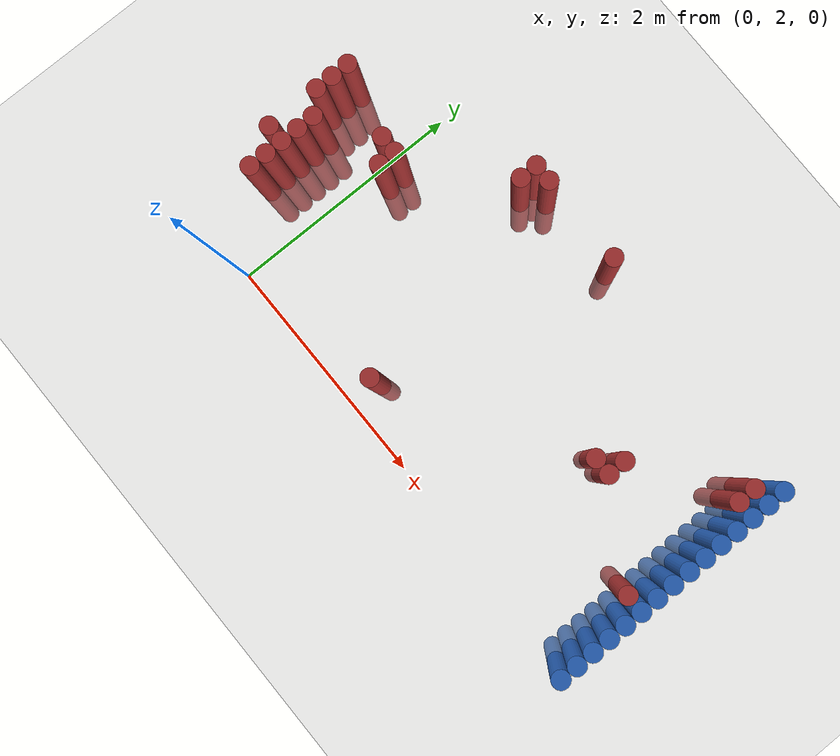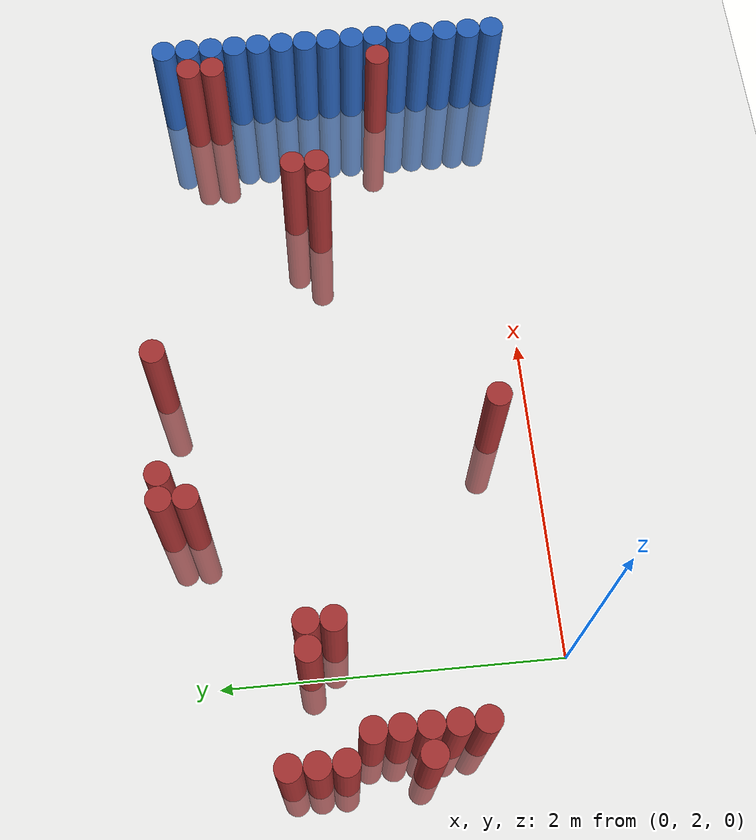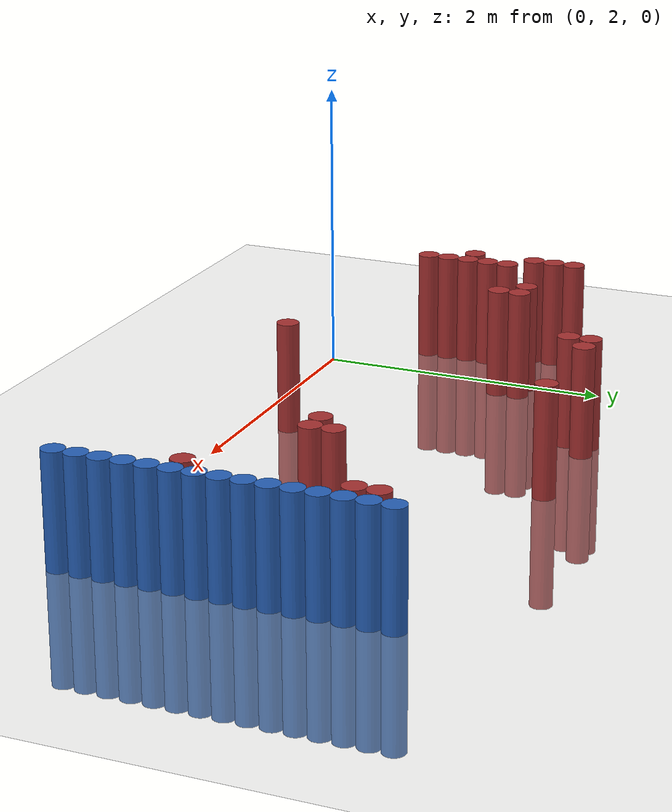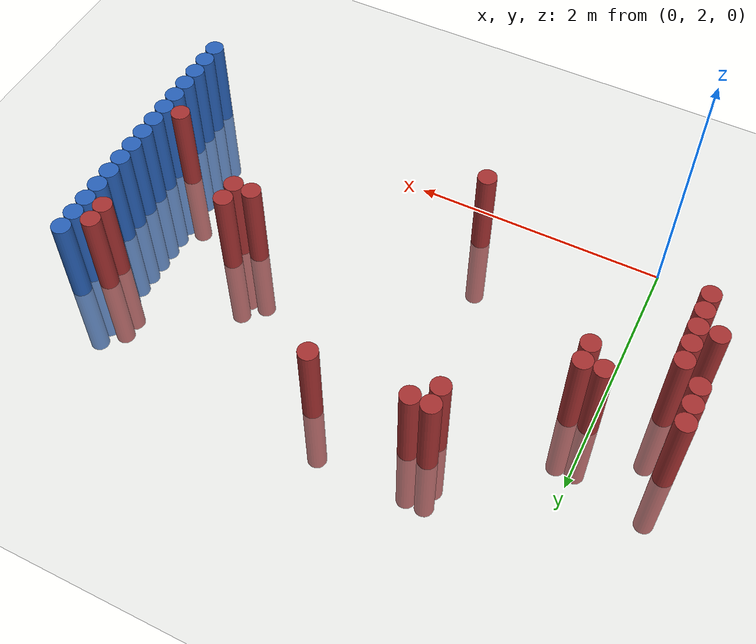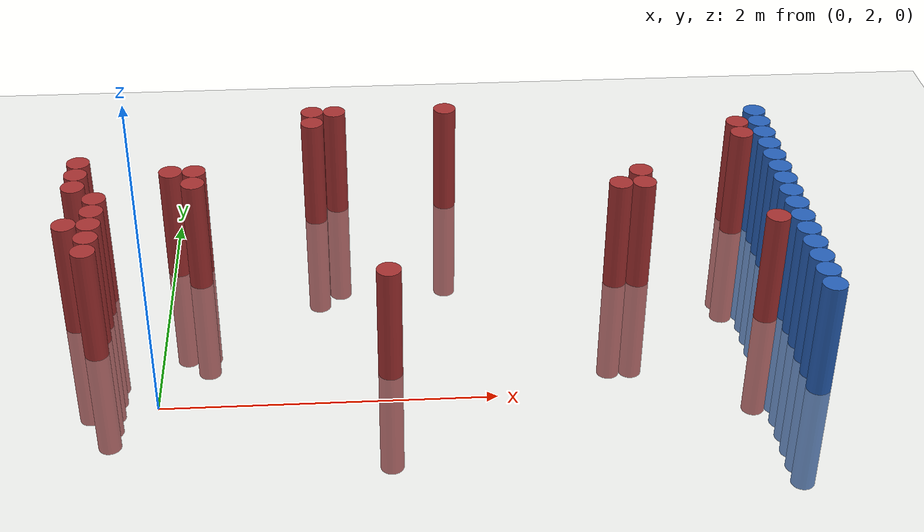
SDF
<sdf version="1.6">
 <world name="default">
  <model name="ground_plane">
   <static>1</static>
   <link name="link">
    <collision name="collision">
     <geometry><plane><normal>0 0 1</normal><size>100 100</size></plane></geometry>
     <surface><friction><ode><mu>100</mu><mu2>50</mu2></ode></friction></surface>
    </collision>
    <visual name="visual">
     <cast_shadows>0</cast_shadows>
     <geometry><plane><normal>0 0 1</normal><size>100 100</size></plane></geometry>
     <material>
      <script><uri>file://media/materials/scripts/gazebo.material</uri><name>Gazebo/Grey</name></script>
     </material>
    </visual>
   </link>
  </model>
  <model name="unit_cylinder_140">
   <static>1</static>
   <pose>3.925000 1.975000 0.000000 0.000000 0.000000 0.000000</pose>
   <link name="link">
    <inertial>
     <mass>1</mass>
     <inertia><ixx>0.145833</ixx><ixy>0</ixy><ixz>0</ixz><iyy>0.145833</iyy><iyz>0</iyz><izz>0.125</izz></inertia>
    </inertial>
    <collision name="collision">
     <geometry><cylinder><radius>0.075000</radius><length>1.5</length></cylinder></geometry>
    </collision>
    <visual name="visual">
     <geometry><cylinder><radius>0.075000</radius><length>1.5</length></cylinder></geometry>
     <material>
      <ambient>0.152000 0.379000 0.720000 1</ambient>
      <diffuse>0.152000 0.379000 0.720000 1</diffuse>
     </material>
     <material>
      <script><name>Gazebo/Grey</name><uri>file://media/materials/scripts/gazebo.material</uri></script>
     </material>
    </visual>
   </link>
  </model>
  <model name="unit_cylinder_142">
   <static>1</static>
   <pose>3.925000 2.125000 0.000000 0.000000 0.000000 0.000000</pose>
   <link name="link">
    <inertial>
     <mass>1</mass>
     <inertia><ixx>0.145833</ixx><ixy>0</ixy><ixz>0</ixz><iyy>0.145833</iyy><iyz>0</iyz><izz>0.125</izz></inertia>
    </inertial>
    <collision name="collision">
     <geometry><cylinder><radius>0.075000</radius><length>1.5</length></cylinder></geometry>
    </collision>
    <visual name="visual">
     <geometry><cylinder><radius>0.075000</radius><length>1.5</length></cylinder></geometry>
     <material>
      <ambient>0.152000 0.379000 0.720000 1</ambient>
      <diffuse>0.152000 0.379000 0.720000 1</diffuse>
     </material>
     <material>
      <script><name>Gazebo/Grey</name><uri>file://media/materials/scripts/gazebo.material</uri></script>
     </material>
    </visual>
   </link>
  </model>
  <model name="unit_cylinder_144">
   <static>1</static>
   <pose>3.925000 2.275000 0.000000 0.000000 0.000000 0.000000</pose>
   <link name="link">
    <inertial>
     <mass>1</mass>
     <inertia><ixx>0.145833</ixx><ixy>0</ixy><ixz>0</ixz><iyy>0.145833</iyy><iyz>0</iyz><izz>0.125</izz></inertia>
    </inertial>
    <collision name="collision">
     <geometry><cylinder><radius>0.075000</radius><length>1.5</length></cylinder></geometry>
    </collision>
    <visual name="visual">
     <geometry><cylinder><radius>0.075000</radius><length>1.5</length></cylinder></geometry>
     <material>
      <ambient>0.152000 0.379000 0.720000 1</ambient>
      <diffuse>0.152000 0.379000 0.720000 1</diffuse>
     </material>
     <material>
      <script><name>Gazebo/Grey</name><uri>file://media/materials/scripts/gazebo.material</uri></script>
     </material>
    </visual>
   </link>
  </model>
  <model name="unit_cylinder_146">
   <static>1</static>
   <pose>3.925000 2.425000 0.000000 0.000000 0.000000 0.000000</pose>
   <link name="link">
    <inertial>
     <mass>1</mass>
     <inertia><ixx>0.145833</ixx><ixy>0</ixy><ixz>0</ixz><iyy>0.145833</iyy><iyz>0</iyz><izz>0.125</izz></inertia>
    </inertial>
    <collision name="collision">
     <geometry><cylinder><radius>0.075000</radius><length>1.5</length></cylinder></geometry>
    </collision>
    <visual name="visual">
     <geometry><cylinder><radius>0.075000</radius><length>1.5</length></cylinder></geometry>
     <material>
      <ambient>0.152000 0.379000 0.720000 1</ambient>
      <diffuse>0.152000 0.379000 0.720000 1</diffuse>
     </material>
     <material>
      <script><name>Gazebo/Grey</name><uri>file://media/materials/scripts/gazebo.material</uri></script>
     </material>
    </visual>
   </link>
  </model>
  <model name="unit_cylinder_148">
   <static>1</static>
   <pose>3.925000 2.575000 0.000000 0.000000 0.000000 0.000000</pose>
   <link name="link">
    <inertial>
     <mass>1</mass>
     <inertia><ixx>0.145833</ixx><ixy>0</ixy><ixz>0</ixz><iyy>0.145833</iyy><iyz>0</iyz><izz>0.125</izz></inertia>
    </inertial>
    <collision name="collision">
     <geometry><cylinder><radius>0.075000</radius><length>1.5</length></cylinder></geometry>
    </collision>
    <visual name="visual">
     <geometry><cylinder><radius>0.075000</radius><length>1.5</length></cylinder></geometry>
     <material>
      <ambient>0.152000 0.379000 0.720000 1</ambient>
      <diffuse>0.152000 0.379000 0.720000 1</diffuse>
     </material>
     <material>
      <script><name>Gazebo/Grey</name><uri>file://media/materials/scripts/gazebo.material</uri></script>
     </material>
    </visual>
   </link>
  </model>
  <model name="unit_cylinder_150">
   <static>1</static>
   <pose>3.925000 2.725000 0.000000 0.000000 0.000000 0.000000</pose>
   <link name="link">
    <inertial>
     <mass>1</mass>
     <inertia><ixx>0.145833</ixx><ixy>0</ixy><ixz>0</ixz><iyy>0.145833</iyy><iyz>0</iyz><izz>0.125</izz></inertia>
    </inertial>
    <collision name="collision">
     <geometry><cylinder><radius>0.075000</radius><length>1.5</length></cylinder></geometry>
    </collision>
    <visual name="visual">
     <geometry><cylinder><radius>0.075000</radius><length>1.5</length></cylinder></geometry>
     <material>
      <ambient>0.152000 0.379000 0.720000 1</ambient>
      <diffuse>0.152000 0.379000 0.720000 1</diffuse>
     </material>
     <material>
      <script><name>Gazebo/Grey</name><uri>file://media/materials/scripts/gazebo.material</uri></script>
     </material>
    </visual>
   </link>
  </model>
  <model name="unit_cylinder_152">
   <static>1</static>
   <pose>3.925000 2.875000 0.000000 0.000000 0.000000 0.000000</pose>
   <link name="link">
    <inertial>
     <mass>1</mass>
     <inertia><ixx>0.145833</ixx><ixy>0</ixy><ixz>0</ixz><iyy>0.145833</iyy><iyz>0</iyz><izz>0.125</izz></inertia>
    </inertial>
    <collision name="collision">
     <geometry><cylinder><radius>0.075000</radius><length>1.5</length></cylinder></geometry>
    </collision>
    <visual name="visual">
     <geometry><cylinder><radius>0.075000</radius><length>1.5</length></cylinder></geometry>
     <material>
      <ambient>0.152000 0.379000 0.720000 1</ambient>
      <diffuse>0.152000 0.379000 0.720000 1</diffuse>
     </material>
     <material>
      <script><name>Gazebo/Grey</name><uri>file://media/materials/scripts/gazebo.material</uri></script>
     </material>
    </visual>
   </link>
  </model>
  <model name="unit_cylinder_154">
   <static>1</static>
   <pose>3.925000 3.025000 0.000000 0.000000 0.000000 0.000000</pose>
   <link name="link">
    <inertial>
     <mass>1</mass>
     <inertia><ixx>0.145833</ixx><ixy>0</ixy><ixz>0</ixz><iyy>0.145833</iyy><iyz>0</iyz><izz>0.125</izz></inertia>
    </inertial>
    <collision name="collision">
     <geometry><cylinder><radius>0.075000</radius><length>1.5</length></cylinder></geometry>
    </collision>
    <visual name="visual">
     <geometry><cylinder><radius>0.075000</radius><length>1.5</length></cylinder></geometry>
     <material>
      <ambient>0.152000 0.379000 0.720000 1</ambient>
      <diffuse>0.152000 0.379000 0.720000 1</diffuse>
     </material>
     <material>
      <script><name>Gazebo/Grey</name><uri>file://media/materials/scripts/gazebo.material</uri></script>
     </material>
    </visual>
   </link>
  </model>
  <model name="unit_cylinder_156">
   <static>1</static>
   <pose>3.925000 3.175000 0.000000 0.000000 0.000000 0.000000</pose>
   <link name="link">
    <inertial>
     <mass>1</mass>
     <inertia><ixx>0.145833</ixx><ixy>0</ixy><ixz>0</ixz><iyy>0.145833</iyy><iyz>0</iyz><izz>0.125</izz></inertia>
    </inertial>
    <collision name="collision">
     <geometry><cylinder><radius>0.075000</radius><length>1.5</length></cylinder></geometry>
    </collision>
    <visual name="visual">
     <geometry><cylinder><radius>0.075000</radius><length>1.5</length></cylinder></geometry>
     <material>
      <ambient>0.152000 0.379000 0.720000 1</ambient>
      <diffuse>0.152000 0.379000 0.720000 1</diffuse>
     </material>
     <material>
      <script><name>Gazebo/Grey</name><uri>file://media/materials/scripts/gazebo.material</uri></script>
     </material>
    </visual>
   </link>
  </model>
  <model name="unit_cylinder_158">
   <static>1</static>
   <pose>3.925000 3.325000 0.000000 0.000000 0.000000 0.000000</pose>
   <link name="link">
    <inertial>
     <mass>1</mass>
     <inertia><ixx>0.145833</ixx><ixy>0</ixy><ixz>0</ixz><iyy>0.145833</iyy><iyz>0</iyz><izz>0.125</izz></inertia>
    </inertial>
    <collision name="collision">
     <geometry><cylinder><radius>0.075000</radius><length>1.5</length></cylinder></geometry>
    </collision>
    <visual name="visual">
     <geometry><cylinder><radius>0.075000</radius><length>1.5</length></cylinder></geometry>
     <material>
      <ambient>0.152000 0.379000 0.720000 1</ambient>
      <diffuse>0.152000 0.379000 0.720000 1</diffuse>
     </material>
     <material>
      <script><name>Gazebo/Grey</name><uri>file://media/materials/scripts/gazebo.material</uri></script>
     </material>
    </visual>
   </link>
  </model>
  <model name="unit_cylinder_160">
   <static>1</static>
   <pose>3.925000 3.475000 0.000000 0.000000 0.000000 0.000000</pose>
   <link name="link">
    <inertial>
     <mass>1</mass>
     <inertia><ixx>0.145833</ixx><ixy>0</ixy><ixz>0</ixz><iyy>0.145833</iyy><iyz>0</iyz><izz>0.125</izz></inertia>
    </inertial>
    <collision name="collision">
     <geometry><cylinder><radius>0.075000</radius><length>1.5</length></cylinder></geometry>
    </collision>
    <visual name="visual">
     <geometry><cylinder><radius>0.075000</radius><length>1.5</length></cylinder></geometry>
     <material>
      <ambient>0.152000 0.379000 0.720000 1</ambient>
      <diffuse>0.152000 0.379000 0.720000 1</diffuse>
     </material>
     <material>
      <script><name>Gazebo/Grey</name><uri>file://media/materials/scripts/gazebo.material</uri></script>
     </material>
    </visual>
   </link>
  </model>
  <model name="unit_cylinder_162">
   <static>1</static>
   <pose>3.925000 3.625000 0.000000 0.000000 0.000000 0.000000</pose>
   <link name="link">
    <inertial>
     <mass>1</mass>
     <inertia><ixx>0.145833</ixx><ixy>0</ixy><ixz>0</ixz><iyy>0.145833</iyy><iyz>0</iyz><izz>0.125</izz></inertia>
    </inertial>
    <collision name="collision">
     <geometry><cylinder><radius>0.075000</radius><length>1.5</length></cylinder></geometry>
    </collision>
    <visual name="visual">
     <geometry><cylinder><radius>0.075000</radius><length>1.5</length></cylinder></geometry>
     <material>
      <ambient>0.152000 0.379000 0.720000 1</ambient>
      <diffuse>0.152000 0.379000 0.720000 1</diffuse>
     </material>
     <material>
      <script><name>Gazebo/Grey</name><uri>file://media/materials/scripts/gazebo.material</uri></script>
     </material>
    </visual>
   </link>
  </model>
  <model name="unit_cylinder_164">
   <static>1</static>
   <pose>3.925000 3.775000 0.000000 0.000000 0.000000 0.000000</pose>
   <link name="link">
    <inertial>
     <mass>1</mass>
     <inertia><ixx>0.145833</ixx><ixy>0</ixy><ixz>0</ixz><iyy>0.145833</iyy><iyz>0</iyz><izz>0.125</izz></inertia>
    </inertial>
    <collision name="collision">
     <geometry><cylinder><radius>0.075000</radius><length>1.5</length></cylinder></geometry>
    </collision>
    <visual name="visual">
     <geometry><cylinder><radius>0.075000</radius><length>1.5</length></cylinder></geometry>
     <material>
      <ambient>0.152000 0.379000 0.720000 1</ambient>
      <diffuse>0.152000 0.379000 0.720000 1</diffuse>
     </material>
     <material>
      <script><name>Gazebo/Grey</name><uri>file://media/materials/scripts/gazebo.material</uri></script>
     </material>
    </visual>
   </link>
  </model>
  <model name="unit_cylinder_166">
   <static>1</static>
   <pose>3.925000 3.925000 0.000000 0.000000 0.000000 0.000000</pose>
   <link name="link">
    <inertial>
     <mass>1</mass>
     <inertia><ixx>0.145833</ixx><ixy>0</ixy><ixz>0</ixz><iyy>0.145833</iyy><iyz>0</iyz><izz>0.125</izz></inertia>
    </inertial>
    <collision name="collision">
     <geometry><cylinder><radius>0.075000</radius><length>1.5</length></cylinder></geometry>
    </collision>
    <visual name="visual">
     <geometry><cylinder><radius>0.075000</radius><length>1.5</length></cylinder></geometry>
     <material>
      <ambient>0.152000 0.379000 0.720000 1</ambient>
      <diffuse>0.152000 0.379000 0.720000 1</diffuse>
     </material>
     <material>
      <script><name>Gazebo/Grey</name><uri>file://media/materials/scripts/gazebo.material</uri></script>
     </material>
    </visual>
   </link>
  </model>
  <model name="unit_cylinder_168">
   <static>1</static>
   <pose>3.925000 4.075000 0.000000 0.000000 0.000000 0.000000</pose>
   <link name="link">
    <inertial>
     <mass>1</mass>
     <inertia><ixx>0.145833</ixx><ixy>0</ixy><ixz>0</ixz><iyy>0.145833</iyy><iyz>0</iyz><izz>0.125</izz></inertia>
    </inertial>
    <collision name="collision">
     <geometry><cylinder><radius>0.075000</radius><length>1.5</length></cylinder></geometry>
    </collision>
    <visual name="visual">
     <geometry><cylinder><radius>0.075000</radius><length>1.5</length></cylinder></geometry>
     <material>
      <ambient>0.152000 0.379000 0.720000 1</ambient>
      <diffuse>0.152000 0.379000 0.720000 1</diffuse>
     </material>
     <material>
      <script><name>Gazebo/Grey</name><uri>file://media/materials/scripts/gazebo.material</uri></script>
     </material>
    </visual>
   </link>
  </model>
  <model name="unit_cylinder_309">
   <static>1</static>
   <pose>-0.575000 2.875000 0.000000 0.000000 0.000000 0.000000</pose>
   <link name="link">
    <inertial>
     <mass>1</mass>
     <inertia><ixx>0.145833</ixx><ixy>0</ixy><ixz>0</ixz><iyy>0.145833</iyy><iyz>0</iyz><izz>0.125</izz></inertia>
    </inertial>
    <collision name="collision">
     <geometry><cylinder><radius>0.075000</radius><length>1.5</length></cylinder></geometry>
    </collision>
    <visual name="visual">
     <geometry><cylinder><radius>0.075000</radius><length>1.5</length></cylinder></geometry>
     <material>
      <ambient>0.648000 0.192000 0.192000 1</ambient>
      <diffuse>0.648000 0.192000 0.192000 1</diffuse>
     </material>
     <material>
      <script><name>Gazebo/Grey</name><uri>file://media/materials/scripts/gazebo.material</uri></script>
     </material>
    </visual>
   </link>
  </model>
  <model name="unit_cylinder_310">
   <static>1</static>
   <pose>-0.575000 3.325000 0.000000 0.000000 0.000000 0.000000</pose>
   <link name="link">
    <inertial>
     <mass>1</mass>
     <inertia><ixx>0.145833</ixx><ixy>0</ixy><ixz>0</ixz><iyy>0.145833</iyy><iyz>0</iyz><izz>0.125</izz></inertia>
    </inertial>
    <collision name="collision">
     <geometry><cylinder><radius>0.075000</radius><length>1.5</length></cylinder></geometry>
    </collision>
    <visual name="visual">
     <geometry><cylinder><radius>0.075000</radius><length>1.5</length></cylinder></geometry>
     <material>
      <ambient>0.648000 0.192000 0.192000 1</ambient>
      <diffuse>0.648000 0.192000 0.192000 1</diffuse>
     </material>
     <material>
      <script><name>Gazebo/Grey</name><uri>file://media/materials/scripts/gazebo.material</uri></script>
     </material>
    </visual>
   </link>
  </model>
  <model name="unit_cylinder_311">
   <static>1</static>
   <pose>-0.575000 3.475000 0.000000 0.000000 0.000000 0.000000</pose>
   <link name="link">
    <inertial>
     <mass>1</mass>
     <inertia><ixx>0.145833</ixx><ixy>0</ixy><ixz>0</ixz><iyy>0.145833</iyy><iyz>0</iyz><izz>0.125</izz></inertia>
    </inertial>
    <collision name="collision">
     <geometry><cylinder><radius>0.075000</radius><length>1.5</length></cylinder></geometry>
    </collision>
    <visual name="visual">
     <geometry><cylinder><radius>0.075000</radius><length>1.5</length></cylinder></geometry>
     <material>
      <ambient>0.648000 0.192000 0.192000 1</ambient>
      <diffuse>0.648000 0.192000 0.192000 1</diffuse>
     </material>
     <material>
      <script><name>Gazebo/Grey</name><uri>file://media/materials/scripts/gazebo.material</uri></script>
     </material>
    </visual>
   </link>
  </model>
  <model name="unit_cylinder_312">
   <static>1</static>
   <pose>-0.575000 3.625000 0.000000 0.000000 0.000000 0.000000</pose>
   <link name="link">
    <inertial>
     <mass>1</mass>
     <inertia><ixx>0.145833</ixx><ixy>0</ixy><ixz>0</ixz><iyy>0.145833</iyy><iyz>0</iyz><izz>0.125</izz></inertia>
    </inertial>
    <collision name="collision">
     <geometry><cylinder><radius>0.075000</radius><length>1.5</length></cylinder></geometry>
    </collision>
    <visual name="visual">
     <geometry><cylinder><radius>0.075000</radius><length>1.5</length></cylinder></geometry>
     <material>
      <ambient>0.648000 0.192000 0.192000 1</ambient>
      <diffuse>0.648000 0.192000 0.192000 1</diffuse>
     </material>
     <material>
      <script><name>Gazebo/Grey</name><uri>file://media/materials/scripts/gazebo.material</uri></script>
     </material>
    </visual>
   </link>
  </model>
  <model name="unit_cylinder_318">
   <static>1</static>
   <pose>-0.425000 2.575000 0.000000 0.000000 0.000000 0.000000</pose>
   <link name="link">
    <inertial>
     <mass>1</mass>
     <inertia><ixx>0.145833</ixx><ixy>0</ixy><ixz>0</ixz><iyy>0.145833</iyy><iyz>0</iyz><izz>0.125</izz></inertia>
    </inertial>
    <collision name="collision">
     <geometry><cylinder><radius>0.075000</radius><length>1.5</length></cylinder></geometry>
    </collision>
    <visual name="visual">
     <geometry><cylinder><radius>0.075000</radius><length>1.5</length></cylinder></geometry>
     <material>
      <ambient>0.648000 0.192000 0.192000 1</ambient>
      <diffuse>0.648000 0.192000 0.192000 1</diffuse>
     </material>
     <material>
      <script><name>Gazebo/Grey</name><uri>file://media/materials/scripts/gazebo.material</uri></script>
     </material>
    </visual>
   </link>
  </model>
  <model name="unit_cylinder_319">
   <static>1</static>
   <pose>-0.425000 2.725000 0.000000 0.000000 0.000000 0.000000</pose>
   <link name="link">
    <inertial>
     <mass>1</mass>
     <inertia><ixx>0.145833</ixx><ixy>0</ixy><ixz>0</ixz><iyy>0.145833</iyy><iyz>0</iyz><izz>0.125</izz></inertia>
    </inertial>
    <collision name="collision">
     <geometry><cylinder><radius>0.075000</radius><length>1.5</length></cylinder></geometry>
    </collision>
    <visual name="visual">
     <geometry><cylinder><radius>0.075000</radius><length>1.5</length></cylinder></geometry>
     <material>
      <ambient>0.648000 0.192000 0.192000 1</ambient>
      <diffuse>0.648000 0.192000 0.192000 1</diffuse>
     </material>
     <material>
      <script><name>Gazebo/Grey</name><uri>file://media/materials/scripts/gazebo.material</uri></script>
     </material>
    </visual>
   </link>
  </model>
  <model name="unit_cylinder_320">
   <static>1</static>
   <pose>-0.425000 2.875000 0.000000 0.000000 0.000000 0.000000</pose>
   <link name="link">
    <inertial>
     <mass>1</mass>
     <inertia><ixx>0.145833</ixx><ixy>0</ixy><ixz>0</ixz><iyy>0.145833</iyy><iyz>0</iyz><izz>0.125</izz></inertia>
    </inertial>
    <collision name="collision">
     <geometry><cylinder><radius>0.075000</radius><length>1.5</length></cylinder></geometry>
    </collision>
    <visual name="visual">
     <geometry><cylinder><radius>0.075000</radius><length>1.5</length></cylinder></geometry>
     <material>
      <ambient>0.648000 0.192000 0.192000 1</ambient>
      <diffuse>0.648000 0.192000 0.192000 1</diffuse>
     </material>
     <material>
      <script><name>Gazebo/Grey</name><uri>file://media/materials/scripts/gazebo.material</uri></script>
     </material>
    </visual>
   </link>
  </model>
  <model name="unit_cylinder_321">
   <static>1</static>
   <pose>-0.425000 3.025000 0.000000 0.000000 0.000000 0.000000</pose>
   <link name="link">
    <inertial>
     <mass>1</mass>
     <inertia><ixx>0.145833</ixx><ixy>0</ixy><ixz>0</ixz><iyy>0.145833</iyy><iyz>0</iyz><izz>0.125</izz></inertia>
    </inertial>
    <collision name="collision">
     <geometry><cylinder><radius>0.075000</radius><length>1.5</length></cylinder></geometry>
    </collision>
    <visual name="visual">
     <geometry><cylinder><radius>0.075000</radius><length>1.5</length></cylinder></geometry>
     <material>
      <ambient>0.648000 0.192000 0.192000 1</ambient>
      <diffuse>0.648000 0.192000 0.192000 1</diffuse>
     </material>
     <material>
      <script><name>Gazebo/Grey</name><uri>file://media/materials/scripts/gazebo.material</uri></script>
     </material>
    </visual>
   </link>
  </model>
  <model name="unit_cylinder_322">
   <static>1</static>
   <pose>-0.425000 3.175000 0.000000 0.000000 0.000000 0.000000</pose>
   <link name="link">
    <inertial>
     <mass>1</mass>
     <inertia><ixx>0.145833</ixx><ixy>0</ixy><ixz>0</ixz><iyy>0.145833</iyy><iyz>0</iyz><izz>0.125</izz></inertia>
    </inertial>
    <collision name="collision">
     <geometry><cylinder><radius>0.075000</radius><length>1.5</length></cylinder></geometry>
    </collision>
    <visual name="visual">
     <geometry><cylinder><radius>0.075000</radius><length>1.5</length></cylinder></geometry>
     <material>
      <ambient>0.648000 0.192000 0.192000 1</ambient>
      <diffuse>0.648000 0.192000 0.192000 1</diffuse>
     </material>
     <material>
      <script><name>Gazebo/Grey</name><uri>file://media/materials/scripts/gazebo.material</uri></script>
     </material>
    </visual>
   </link>
  </model>
  <model name="unit_cylinder_329">
   <static>1</static>
   <pose>0.025000 3.475000 0.000000 0.000000 0.000000 0.000000</pose>
   <link name="link">
    <inertial>
     <mass>1</mass>
     <inertia><ixx>0.145833</ixx><ixy>0</ixy><ixz>0</ixz><iyy>0.145833</iyy><iyz>0</iyz><izz>0.125</izz></inertia>
    </inertial>
    <collision name="collision">
     <geometry><cylinder><radius>0.075000</radius><length>1.5</length></cylinder></geometry>
    </collision>
    <visual name="visual">
     <geometry><cylinder><radius>0.075000</radius><length>1.5</length></cylinder></geometry>
     <material>
      <ambient>0.648000 0.192000 0.192000 1</ambient>
      <diffuse>0.648000 0.192000 0.192000 1</diffuse>
     </material>
     <material>
      <script><name>Gazebo/Grey</name><uri>file://media/materials/scripts/gazebo.material</uri></script>
     </material>
    </visual>
   </link>
  </model>
  <model name="unit_cylinder_330">
   <static>1</static>
   <pose>0.175000 3.325000 0.000000 0.000000 0.000000 0.000000</pose>
   <link name="link">
    <inertial>
     <mass>1</mass>
     <inertia><ixx>0.145833</ixx><ixy>0</ixy><ixz>0</ixz><iyy>0.145833</iyy><iyz>0</iyz><izz>0.125</izz></inertia>
    </inertial>
    <collision name="collision">
     <geometry><cylinder><radius>0.075000</radius><length>1.5</length></cylinder></geometry>
    </collision>
    <visual name="visual">
     <geometry><cylinder><radius>0.075000</radius><length>1.5</length></cylinder></geometry>
     <material>
      <ambient>0.648000 0.192000 0.192000 1</ambient>
      <diffuse>0.648000 0.192000 0.192000 1</diffuse>
     </material>
     <material>
      <script><name>Gazebo/Grey</name><uri>file://media/materials/scripts/gazebo.material</uri></script>
     </material>
    </visual>
   </link>
  </model>
  <model name="unit_cylinder_331">
   <static>1</static>
   <pose>0.175000 3.475000 0.000000 0.000000 0.000000 0.000000</pose>
   <link name="link">
    <inertial>
     <mass>1</mass>
     <inertia><ixx>0.145833</ixx><ixy>0</ixy><ixz>0</ixz><iyy>0.145833</iyy><iyz>0</iyz><izz>0.125</izz></inertia>
    </inertial>
    <collision name="collision">
     <geometry><cylinder><radius>0.075000</radius><length>1.5</length></cylinder></geometry>
    </collision>
    <visual name="visual">
     <geometry><cylinder><radius>0.075000</radius><length>1.5</length></cylinder></geometry>
     <material>
      <ambient>0.648000 0.192000 0.192000 1</ambient>
      <diffuse>0.648000 0.192000 0.192000 1</diffuse>
     </material>
     <material>
      <script><name>Gazebo/Grey</name><uri>file://media/materials/scripts/gazebo.material</uri></script>
     </material>
    </visual>
   </link>
  </model>
  <model name="unit_cylinder_338">
   <static>1</static>
   <pose>0.925000 4.075000 0.000000 0.000000 0.000000 0.000000</pose>
   <link name="link">
    <inertial>
     <mass>1</mass>
     <inertia><ixx>0.145833</ixx><ixy>0</ixy><ixz>0</ixz><iyy>0.145833</iyy><iyz>0</iyz><izz>0.125</izz></inertia>
    </inertial>
    <collision name="collision">
     <geometry><cylinder><radius>0.075000</radius><length>1.5</length></cylinder></geometry>
    </collision>
    <visual name="visual">
     <geometry><cylinder><radius>0.075000</radius><length>1.5</length></cylinder></geometry>
     <material>
      <ambient>0.648000 0.192000 0.192000 1</ambient>
      <diffuse>0.648000 0.192000 0.192000 1</diffuse>
     </material>
     <material>
      <script><name>Gazebo/Grey</name><uri>file://media/materials/scripts/gazebo.material</uri></script>
     </material>
    </visual>
   </link>
  </model>
  <model name="unit_cylinder_339">
   <static>1</static>
   <pose>0.925000 4.225000 0.000000 0.000000 0.000000 0.000000</pose>
   <link name="link">
    <inertial>
     <mass>1</mass>
     <inertia><ixx>0.145833</ixx><ixy>0</ixy><ixz>0</ixz><iyy>0.145833</iyy><iyz>0</iyz><izz>0.125</izz></inertia>
    </inertial>
    <collision name="collision">
     <geometry><cylinder><radius>0.075000</radius><length>1.5</length></cylinder></geometry>
    </collision>
    <visual name="visual">
     <geometry><cylinder><radius>0.075000</radius><length>1.5</length></cylinder></geometry>
     <material>
      <ambient>0.648000 0.192000 0.192000 1</ambient>
      <diffuse>0.648000 0.192000 0.192000 1</diffuse>
     </material>
     <material>
      <script><name>Gazebo/Grey</name><uri>file://media/materials/scripts/gazebo.material</uri></script>
     </material>
    </visual>
   </link>
  </model>
  <model name="unit_cylinder_347">
   <static>1</static>
   <pose>1.075000 4.225000 0.000000 0.000000 0.000000 0.000000</pose>
   <link name="link">
    <inertial>
     <mass>1</mass>
     <inertia><ixx>0.145833</ixx><ixy>0</ixy><ixz>0</ixz><iyy>0.145833</iyy><iyz>0</iyz><izz>0.125</izz></inertia>
    </inertial>
    <collision name="collision">
     <geometry><cylinder><radius>0.075000</radius><length>1.5</length></cylinder></geometry>
    </collision>
    <visual name="visual">
     <geometry><cylinder><radius>0.075000</radius><length>1.5</length></cylinder></geometry>
     <material>
      <ambient>0.648000 0.192000 0.192000 1</ambient>
      <diffuse>0.648000 0.192000 0.192000 1</diffuse>
     </material>
     <material>
      <script><name>Gazebo/Grey</name><uri>file://media/materials/scripts/gazebo.material</uri></script>
     </material>
    </visual>
   </link>
  </model>
  <model name="unit_cylinder_351">
   <static>1</static>
   <pose>1.375000 2.275000 0.000000 0.000000 0.000000 0.000000</pose>
   <link name="link">
    <inertial>
     <mass>1</mass>
     <inertia><ixx>0.145833</ixx><ixy>0</ixy><ixz>0</ixz><iyy>0.145833</iyy><iyz>0</iyz><izz>0.125</izz></inertia>
    </inertial>
    <collision name="collision">
     <geometry><cylinder><radius>0.075000</radius><length>1.5</length></cylinder></geometry>
    </collision>
    <visual name="visual">
     <geometry><cylinder><radius>0.075000</radius><length>1.5</length></cylinder></geometry>
     <material>
      <ambient>0.648000 0.192000 0.192000 1</ambient>
      <diffuse>0.648000 0.192000 0.192000 1</diffuse>
     </material>
     <material>
      <script><name>Gazebo/Grey</name><uri>file://media/materials/scripts/gazebo.material</uri></script>
     </material>
    </visual>
   </link>
  </model>
  <model name="unit_cylinder_363">
   <static>1</static>
   <pose>1.825000 4.225000 0.000000 0.000000 0.000000 0.000000</pose>
   <link name="link">
    <inertial>
     <mass>1</mass>
     <inertia><ixx>0.145833</ixx><ixy>0</ixy><ixz>0</ixz><iyy>0.145833</iyy><iyz>0</iyz><izz>0.125</izz></inertia>
    </inertial>
    <collision name="collision">
     <geometry><cylinder><radius>0.075000</radius><length>1.5</length></cylinder></geometry>
    </collision>
    <visual name="visual">
     <geometry><cylinder><radius>0.075000</radius><length>1.5</length></cylinder></geometry>
     <material>
      <ambient>0.648000 0.192000 0.192000 1</ambient>
      <diffuse>0.648000 0.192000 0.192000 1</diffuse>
     </material>
     <material>
      <script><name>Gazebo/Grey</name><uri>file://media/materials/scripts/gazebo.material</uri></script>
     </material>
    </visual>
   </link>
  </model>
  <model name="unit_cylinder_390">
   <static>1</static>
   <pose>2.875000 3.175000 0.000000 0.000000 0.000000 0.000000</pose>
   <link name="link">
    <inertial>
     <mass>1</mass>
     <inertia><ixx>0.145833</ixx><ixy>0</ixy><ixz>0</ixz><iyy>0.145833</iyy><iyz>0</iyz><izz>0.125</izz></inertia>
    </inertial>
    <collision name="collision">
     <geometry><cylinder><radius>0.075000</radius><length>1.5</length></cylinder></geometry>
    </collision>
    <visual name="visual">
     <geometry><cylinder><radius>0.075000</radius><length>1.5</length></cylinder></geometry>
     <material>
      <ambient>0.648000 0.192000 0.192000 1</ambient>
      <diffuse>0.648000 0.192000 0.192000 1</diffuse>
     </material>
     <material>
      <script><name>Gazebo/Grey</name><uri>file://media/materials/scripts/gazebo.material</uri></script>
     </material>
    </visual>
   </link>
  </model>
  <model name="unit_cylinder_398">
   <static>1</static>
   <pose>3.025000 3.175000 0.000000 0.000000 0.000000 0.000000</pose>
   <link name="link">
    <inertial>
     <mass>1</mass>
     <inertia><ixx>0.145833</ixx><ixy>0</ixy><ixz>0</ixz><iyy>0.145833</iyy><iyz>0</iyz><izz>0.125</izz></inertia>
    </inertial>
    <collision name="collision">
     <geometry><cylinder><radius>0.075000</radius><length>1.5</length></cylinder></geometry>
    </collision>
    <visual name="visual">
     <geometry><cylinder><radius>0.075000</radius><length>1.5</length></cylinder></geometry>
     <material>
      <ambient>0.648000 0.192000 0.192000 1</ambient>
      <diffuse>0.648000 0.192000 0.192000 1</diffuse>
     </material>
     <material>
      <script><name>Gazebo/Grey</name><uri>file://media/materials/scripts/gazebo.material</uri></script>
     </material>
    </visual>
   </link>
  </model>
  <model name="unit_cylinder_399">
   <static>1</static>
   <pose>3.025000 3.325000 0.000000 0.000000 0.000000 0.000000</pose>
   <link name="link">
    <inertial>
     <mass>1</mass>
     <inertia><ixx>0.145833</ixx><ixy>0</ixy><ixz>0</ixz><iyy>0.145833</iyy><iyz>0</iyz><izz>0.125</izz></inertia>
    </inertial>
    <collision name="collision">
     <geometry><cylinder><radius>0.075000</radius><length>1.5</length></cylinder></geometry>
    </collision>
    <visual name="visual">
     <geometry><cylinder><radius>0.075000</radius><length>1.5</length></cylinder></geometry>
     <material>
      <ambient>0.648000 0.192000 0.192000 1</ambient>
      <diffuse>0.648000 0.192000 0.192000 1</diffuse>
     </material>
     <material>
      <script><name>Gazebo/Grey</name><uri>file://media/materials/scripts/gazebo.material</uri></script>
     </material>
    </visual>
   </link>
  </model>
  <model name="unit_cylinder_430">
   <static>1</static>
   <pose>3.775000 2.725000 0.000000 0.000000 0.000000 0.000000</pose>
   <link name="link">
    <inertial>
     <mass>1</mass>
     <inertia><ixx>0.145833</ixx><ixy>0</ixy><ixz>0</ixz><iyy>0.145833</iyy><iyz>0</iyz><izz>0.125</izz></inertia>
    </inertial>
    <collision name="collision">
     <geometry><cylinder><radius>0.075000</radius><length>1.5</length></cylinder></geometry>
    </collision>
    <visual name="visual">
     <geometry><cylinder><radius>0.075000</radius><length>1.5</length></cylinder></geometry>
     <material>
      <ambient>0.648000 0.192000 0.192000 1</ambient>
      <diffuse>0.648000 0.192000 0.192000 1</diffuse>
     </material>
     <material>
      <script><name>Gazebo/Grey</name><uri>file://media/materials/scripts/gazebo.material</uri></script>
     </material>
    </visual>
   </link>
  </model>
  <model name="unit_cylinder_431">
   <static>1</static>
   <pose>3.775000 3.775000 0.000000 0.000000 0.000000 0.000000</pose>
   <link name="link">
    <inertial>
     <mass>1</mass>
     <inertia><ixx>0.145833</ixx><ixy>0</ixy><ixz>0</ixz><iyy>0.145833</iyy><iyz>0</iyz><izz>0.125</izz></inertia>
    </inertial>
    <collision name="collision">
     <geometry><cylinder><radius>0.075000</radius><length>1.5</length></cylinder></geometry>
    </collision>
    <visual name="visual">
     <geometry><cylinder><radius>0.075000</radius><length>1.5</length></cylinder></geometry>
     <material>
      <ambient>0.648000 0.192000 0.192000 1</ambient>
      <diffuse>0.648000 0.192000 0.192000 1</diffuse>
     </material>
     <material>
      <script><name>Gazebo/Grey</name><uri>file://media/materials/scripts/gazebo.material</uri></script>
     </material>
    </visual>
   </link>
  </model>
  <model name="unit_cylinder_432">
   <static>1</static>
   <pose>3.775000 3.925000 0.000000 0.000000 0.000000 0.000000</pose>
   <link name="link">
    <inertial>
     <mass>1</mass>
     <inertia><ixx>0.145833</ixx><ixy>0</ixy><ixz>0</ixz><iyy>0.145833</iyy><iyz>0</iyz><izz>0.125</izz></inertia>
    </inertial>
    <collision name="collision">
     <geometry><cylinder><radius>0.075000</radius><length>1.5</length></cylinder></geometry>
    </collision>
    <visual name="visual">
     <geometry><cylinder><radius>0.075000</radius><length>1.5</length></cylinder></geometry>
     <material>
      <ambient>0.648000 0.192000 0.192000 1</ambient>
      <diffuse>0.648000 0.192000 0.192000 1</diffuse>
     </material>
     <material>
      <script><name>Gazebo/Grey</name><uri>file://media/materials/scripts/gazebo.material</uri></script>
     </material>
    </visual>
   </link>
  </model>
  <model name="unit_cylinder_459">
   <static>1</static>
   <pose>3.925000 1.975000 0.000000 0.000000 0.000000 0.000000</pose>
   <link name="link">
    <inertial>
     <mass>1</mass>
     <inertia><ixx>0.145833</ixx><ixy>0</ixy><ixz>0</ixz><iyy>0.145833</iyy><iyz>0</iyz><izz>0.125</izz></inertia>
    </inertial>
    <collision name="collision">
     <geometry><cylinder><radius>0.075000</radius><length>1.5</length></cylinder></geometry>
    </collision>
    <visual name="visual">
     <geometry><cylinder><radius>0.075000</radius><length>1.5</length></cylinder></geometry>
     <material>
      <ambient>0.152000 0.379000 0.720000 1</ambient>
      <diffuse>0.152000 0.379000 0.720000 1</diffuse>
     </material>
     <material>
      <script><name>Gazebo/Grey</name><uri>file://media/materials/scripts/gazebo.material</uri></script>
     </material>
    </visual>
   </link>
  </model>
  <model name="unit_cylinder_460">
   <static>1</static>
   <pose>3.925000 2.125000 0.000000 0.000000 0.000000 0.000000</pose>
   <link name="link">
    <inertial>
     <mass>1</mass>
     <inertia><ixx>0.145833</ixx><ixy>0</ixy><ixz>0</ixz><iyy>0.145833</iyy><iyz>0</iyz><izz>0.125</izz></inertia>
    </inertial>
    <collision name="collision">
     <geometry><cylinder><radius>0.075000</radius><length>1.5</length></cylinder></geometry>
    </collision>
    <visual name="visual">
     <geometry><cylinder><radius>0.075000</radius><length>1.5</length></cylinder></geometry>
     <material>
      <ambient>0.152000 0.379000 0.720000 1</ambient>
      <diffuse>0.152000 0.379000 0.720000 1</diffuse>
     </material>
     <material>
      <script><name>Gazebo/Grey</name><uri>file://media/materials/scripts/gazebo.material</uri></script>
     </material>
    </visual>
   </link>
  </model>
  <model name="unit_cylinder_461">
   <static>1</static>
   <pose>3.925000 2.275000 0.000000 0.000000 0.000000 0.000000</pose>
   <link name="link">
    <inertial>
     <mass>1</mass>
     <inertia><ixx>0.145833</ixx><ixy>0</ixy><ixz>0</ixz><iyy>0.145833</iyy><iyz>0</iyz><izz>0.125</izz></inertia>
    </inertial>
    <collision name="collision">
     <geometry><cylinder><radius>0.075000</radius><length>1.5</length></cylinder></geometry>
    </collision>
    <visual name="visual">
     <geometry><cylinder><radius>0.075000</radius><length>1.5</length></cylinder></geometry>
     <material>
      <ambient>0.152000 0.379000 0.720000 1</ambient>
      <diffuse>0.152000 0.379000 0.720000 1</diffuse>
     </material>
     <material>
      <script><name>Gazebo/Grey</name><uri>file://media/materials/scripts/gazebo.material</uri></script>
     </material>
    </visual>
   </link>
  </model>
  <model name="unit_cylinder_462">
   <static>1</static>
   <pose>3.925000 2.425000 0.000000 0.000000 0.000000 0.000000</pose>
   <link name="link">
    <inertial>
     <mass>1</mass>
     <inertia><ixx>0.145833</ixx><ixy>0</ixy><ixz>0</ixz><iyy>0.145833</iyy><iyz>0</iyz><izz>0.125</izz></inertia>
    </inertial>
    <collision name="collision">
     <geometry><cylinder><radius>0.075000</radius><length>1.5</length></cylinder></geometry>
    </collision>
    <visual name="visual">
     <geometry><cylinder><radius>0.075000</radius><length>1.5</length></cylinder></geometry>
     <material>
      <ambient>0.152000 0.379000 0.720000 1</ambient>
      <diffuse>0.152000 0.379000 0.720000 1</diffuse>
     </material>
     <material>
      <script><name>Gazebo/Grey</name><uri>file://media/materials/scripts/gazebo.material</uri></script>
     </material>
    </visual>
   </link>
  </model>
  <model name="unit_cylinder_463">
   <static>1</static>
   <pose>3.925000 2.575000 0.000000 0.000000 0.000000 0.000000</pose>
   <link name="link">
    <inertial>
     <mass>1</mass>
     <inertia><ixx>0.145833</ixx><ixy>0</ixy><ixz>0</ixz><iyy>0.145833</iyy><iyz>0</iyz><izz>0.125</izz></inertia>
    </inertial>
    <collision name="collision">
     <geometry><cylinder><radius>0.075000</radius><length>1.5</length></cylinder></geometry>
    </collision>
    <visual name="visual">
     <geometry><cylinder><radius>0.075000</radius><length>1.5</length></cylinder></geometry>
     <material>
      <ambient>0.152000 0.379000 0.720000 1</ambient>
      <diffuse>0.152000 0.379000 0.720000 1</diffuse>
     </material>
     <material>
      <script><name>Gazebo/Grey</name><uri>file://media/materials/scripts/gazebo.material</uri></script>
     </material>
    </visual>
   </link>
  </model>
  <model name="unit_cylinder_464">
   <static>1</static>
   <pose>3.925000 2.725000 0.000000 0.000000 0.000000 0.000000</pose>
   <link name="link">
    <inertial>
     <mass>1</mass>
     <inertia><ixx>0.145833</ixx><ixy>0</ixy><ixz>0</ixz><iyy>0.145833</iyy><iyz>0</iyz><izz>0.125</izz></inertia>
    </inertial>
    <collision name="collision">
     <geometry><cylinder><radius>0.075000</radius><length>1.5</length></cylinder></geometry>
    </collision>
    <visual name="visual">
     <geometry><cylinder><radius>0.075000</radius><length>1.5</length></cylinder></geometry>
     <material>
      <ambient>0.152000 0.379000 0.720000 1</ambient>
      <diffuse>0.152000 0.379000 0.720000 1</diffuse>
     </material>
     <material>
      <script><name>Gazebo/Grey</name><uri>file://media/materials/scripts/gazebo.material</uri></script>
     </material>
    </visual>
   </link>
  </model>
  <model name="unit_cylinder_465">
   <static>1</static>
   <pose>3.925000 2.875000 0.000000 0.000000 0.000000 0.000000</pose>
   <link name="link">
    <inertial>
     <mass>1</mass>
     <inertia><ixx>0.145833</ixx><ixy>0</ixy><ixz>0</ixz><iyy>0.145833</iyy><iyz>0</iyz><izz>0.125</izz></inertia>
    </inertial>
    <collision name="collision">
     <geometry><cylinder><radius>0.075000</radius><length>1.5</length></cylinder></geometry>
    </collision>
    <visual name="visual">
     <geometry><cylinder><radius>0.075000</radius><length>1.5</length></cylinder></geometry>
     <material>
      <ambient>0.152000 0.379000 0.720000 1</ambient>
      <diffuse>0.152000 0.379000 0.720000 1</diffuse>
     </material>
     <material>
      <script><name>Gazebo/Grey</name><uri>file://media/materials/scripts/gazebo.material</uri></script>
     </material>
    </visual>
   </link>
  </model>
  <model name="unit_cylinder_466">
   <static>1</static>
   <pose>3.925000 3.025000 0.000000 0.000000 0.000000 0.000000</pose>
   <link name="link">
    <inertial>
     <mass>1</mass>
     <inertia><ixx>0.145833</ixx><ixy>0</ixy><ixz>0</ixz><iyy>0.145833</iyy><iyz>0</iyz><izz>0.125</izz></inertia>
    </inertial>
    <collision name="collision">
     <geometry><cylinder><radius>0.075000</radius><length>1.5</length></cylinder></geometry>
    </collision>
    <visual name="visual">
     <geometry><cylinder><radius>0.075000</radius><length>1.5</length></cylinder></geometry>
     <material>
      <ambient>0.152000 0.379000 0.720000 1</ambient>
      <diffuse>0.152000 0.379000 0.720000 1</diffuse>
     </material>
     <material>
      <script><name>Gazebo/Grey</name><uri>file://media/materials/scripts/gazebo.material</uri></script>
     </material>
    </visual>
   </link>
  </model>
  <model name="unit_cylinder_467">
   <static>1</static>
   <pose>3.925000 3.175000 0.000000 0.000000 0.000000 0.000000</pose>
   <link name="link">
    <inertial>
     <mass>1</mass>
     <inertia><ixx>0.145833</ixx><ixy>0</ixy><ixz>0</ixz><iyy>0.145833</iyy><iyz>0</iyz><izz>0.125</izz></inertia>
    </inertial>
    <collision name="collision">
     <geometry><cylinder><radius>0.075000</radius><length>1.5</length></cylinder></geometry>
    </collision>
    <visual name="visual">
     <geometry><cylinder><radius>0.075000</radius><length>1.5</length></cylinder></geometry>
     <material>
      <ambient>0.152000 0.379000 0.720000 1</ambient>
      <diffuse>0.152000 0.379000 0.720000 1</diffuse>
     </material>
     <material>
      <script><name>Gazebo/Grey</name><uri>file://media/materials/scripts/gazebo.material</uri></script>
     </material>
    </visual>
   </link>
  </model>
  <model name="unit_cylinder_468">
   <static>1</static>
   <pose>3.925000 3.325000 0.000000 0.000000 0.000000 0.000000</pose>
   <link name="link">
    <inertial>
     <mass>1</mass>
     <inertia><ixx>0.145833</ixx><ixy>0</ixy><ixz>0</ixz><iyy>0.145833</iyy><iyz>0</iyz><izz>0.125</izz></inertia>
    </inertial>
    <collision name="collision">
     <geometry><cylinder><radius>0.075000</radius><length>1.5</length></cylinder></geometry>
    </collision>
    <visual name="visual">
     <geometry><cylinder><radius>0.075000</radius><length>1.5</length></cylinder></geometry>
     <material>
      <ambient>0.152000 0.379000 0.720000 1</ambient>
      <diffuse>0.152000 0.379000 0.720000 1</diffuse>
     </material>
     <material>
      <script><name>Gazebo/Grey</name><uri>file://media/materials/scripts/gazebo.material</uri></script>
     </material>
    </visual>
   </link>
  </model>
  <model name="unit_cylinder_469">
   <static>1</static>
   <pose>3.925000 3.475000 0.000000 0.000000 0.000000 0.000000</pose>
   <link name="link">
    <inertial>
     <mass>1</mass>
     <inertia><ixx>0.145833</ixx><ixy>0</ixy><ixz>0</ixz><iyy>0.145833</iyy><iyz>0</iyz><izz>0.125</izz></inertia>
    </inertial>
    <collision name="collision">
     <geometry><cylinder><radius>0.075000</radius><length>1.5</length></cylinder></geometry>
    </collision>
    <visual name="visual">
     <geometry><cylinder><radius>0.075000</radius><length>1.5</length></cylinder></geometry>
     <material>
      <ambient>0.152000 0.379000 0.720000 1</ambient>
      <diffuse>0.152000 0.379000 0.720000 1</diffuse>
     </material>
     <material>
      <script><name>Gazebo/Grey</name><uri>file://media/materials/scripts/gazebo.material</uri></script>
     </material>
    </visual>
   </link>
  </model>
  <model name="unit_cylinder_470">
   <static>1</static>
   <pose>3.925000 3.625000 0.000000 0.000000 0.000000 0.000000</pose>
   <link name="link">
    <inertial>
     <mass>1</mass>
     <inertia><ixx>0.145833</ixx><ixy>0</ixy><ixz>0</ixz><iyy>0.145833</iyy><iyz>0</iyz><izz>0.125</izz></inertia>
    </inertial>
    <collision name="collision">
     <geometry><cylinder><radius>0.075000</radius><length>1.5</length></cylinder></geometry>
    </collision>
    <visual name="visual">
     <geometry><cylinder><radius>0.075000</radius><length>1.5</length></cylinder></geometry>
     <material>
      <ambient>0.152000 0.379000 0.720000 1</ambient>
      <diffuse>0.152000 0.379000 0.720000 1</diffuse>
     </material>
     <material>
      <script><name>Gazebo/Grey</name><uri>file://media/materials/scripts/gazebo.material</uri></script>
     </material>
    </visual>
   </link>
  </model>
  <model name="unit_cylinder_471">
   <static>1</static>
   <pose>3.925000 3.775000 0.000000 0.000000 0.000000 0.000000</pose>
   <link name="link">
    <inertial>
     <mass>1</mass>
     <inertia><ixx>0.145833</ixx><ixy>0</ixy><ixz>0</ixz><iyy>0.145833</iyy><iyz>0</iyz><izz>0.125</izz></inertia>
    </inertial>
    <collision name="collision">
     <geometry><cylinder><radius>0.075000</radius><length>1.5</length></cylinder></geometry>
    </collision>
    <visual name="visual">
     <geometry><cylinder><radius>0.075000</radius><length>1.5</length></cylinder></geometry>
     <material>
      <ambient>0.152000 0.379000 0.720000 1</ambient>
      <diffuse>0.152000 0.379000 0.720000 1</diffuse>
     </material>
     <material>
      <script><name>Gazebo/Grey</name><uri>file://media/materials/scripts/gazebo.material</uri></script>
     </material>
    </visual>
   </link>
  </model>
  <model name="unit_cylinder_472">
   <static>1</static>
   <pose>3.925000 3.925000 0.000000 0.000000 0.000000 0.000000</pose>
   <link name="link">
    <inertial>
     <mass>1</mass>
     <inertia><ixx>0.145833</ixx><ixy>0</ixy><ixz>0</ixz><iyy>0.145833</iyy><iyz>0</iyz><izz>0.125</izz></inertia>
    </inertial>
    <collision name="collision">
     <geometry><cylinder><radius>0.075000</radius><length>1.5</length></cylinder></geometry>
    </collision>
    <visual name="visual">
     <geometry><cylinder><radius>0.075000</radius><length>1.5</length></cylinder></geometry>
     <material>
      <ambient>0.152000 0.379000 0.720000 1</ambient>
      <diffuse>0.152000 0.379000 0.720000 1</diffuse>
     </material>
     <material>
      <script><name>Gazebo/Grey</name><uri>file://media/materials/scripts/gazebo.material</uri></script>
     </material>
    </visual>
   </link>
  </model>
  <model name="unit_cylinder_473">
   <static>1</static>
   <pose>3.925000 4.075000 0.000000 0.000000 0.000000 0.000000</pose>
   <link name="link">
    <inertial>
     <mass>1</mass>
     <inertia><ixx>0.145833</ixx><ixy>0</ixy><ixz>0</ixz><iyy>0.145833</iyy><iyz>0</iyz><izz>0.125</izz></inertia>
    </inertial>
    <collision name="collision">
     <geometry><cylinder><radius>0.075000</radius><length>1.5</length></cylinder></geometry>
    </collision>
    <visual name="visual">
     <geometry><cylinder><radius>0.075000</radius><length>1.5</length></cylinder></geometry>
     <material>
      <ambient>0.152000 0.379000 0.720000 1</ambient>
      <diffuse>0.152000 0.379000 0.720000 1</diffuse>
     </material>
     <material>
      <script><name>Gazebo/Grey</name><uri>file://media/materials/scripts/gazebo.material</uri></script>
     </material>
    </visual>
   </link>
  </model>
 </world>
</sdf>
